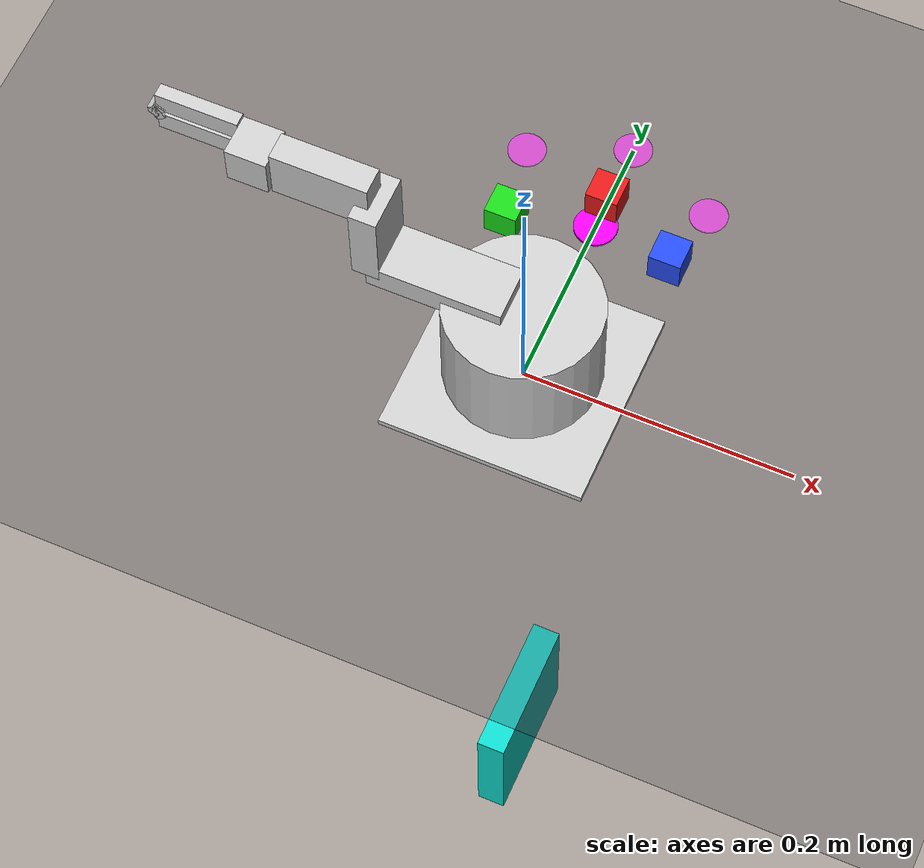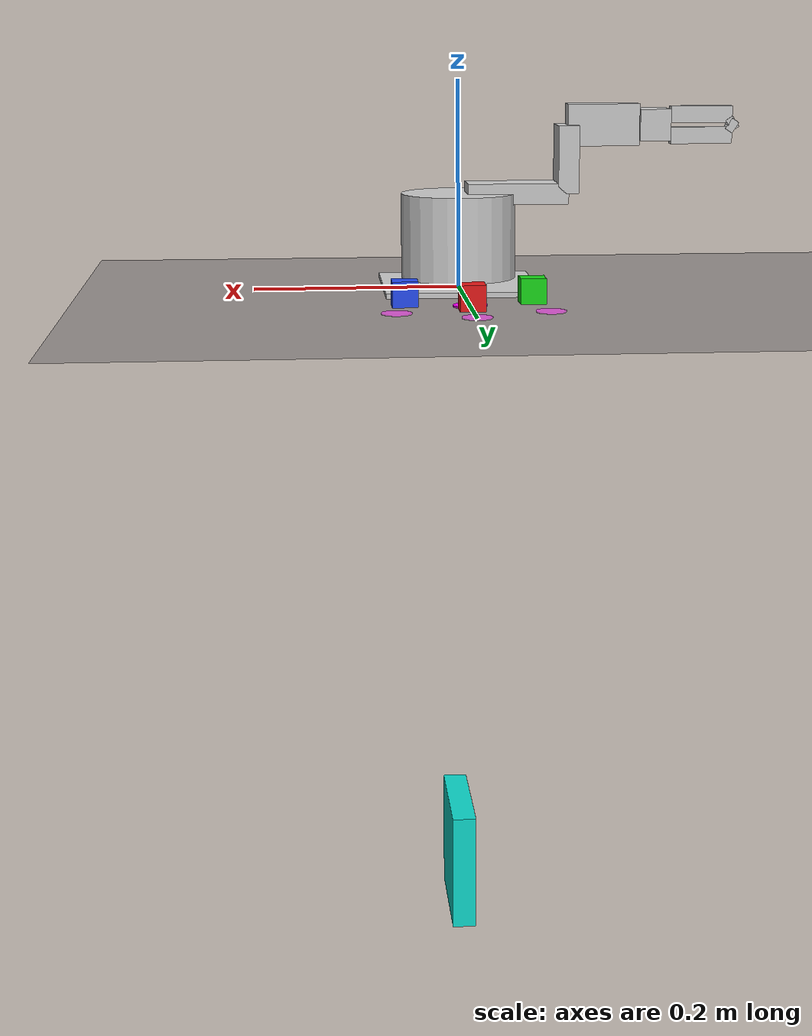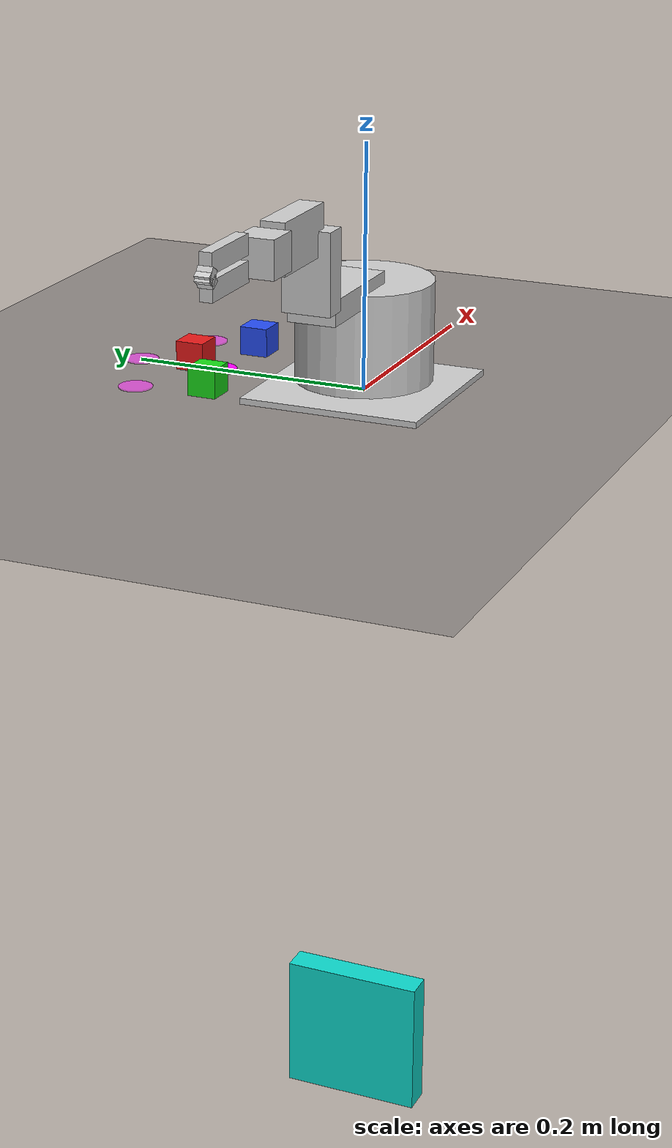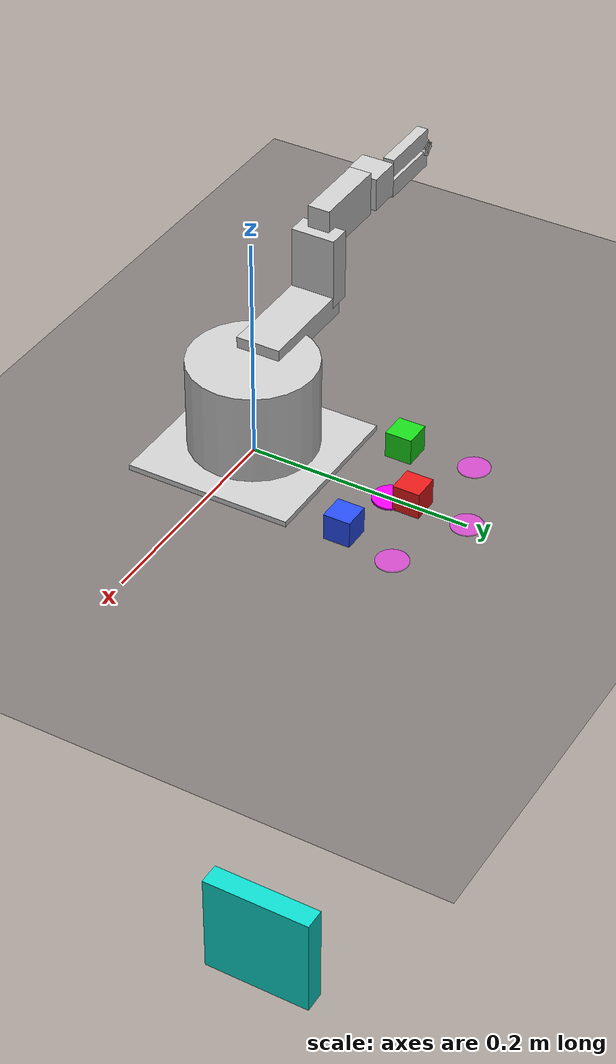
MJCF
<mujoco model="bracket_arm">
  <compiler angle="radian" autolimits="true"/>
  <option gravity="0 0 -9.81" timestep="0.002" integrator="implicitfast"/>

  <visual>
    <headlight ambient="0.4 0.4 0.4" diffuse="0.5 0.5 0.5" specular="0.1 0.1 0.1"/>
    <quality shadowsize="4096"/>
  </visual>

  <asset>
    <texture name="grid" type="2d" builtin="checker" rgb1="0.18 0.18 0.20" rgb2="0.24 0.24 0.27"
             width="512" height="512" mark="cross" markrgb="0.3 0.3 0.32"/>
    <material name="table" texture="grid" texrepeat="8 8" reflectance="0.05"/>
    <material name="silver" rgba="0.6 0.6 0.6 1"/>
    <material name="green"  rgba="0.1 0.8 0.1 1"/>
    <material name="cyan"   rgba="0.1 0.8 0.8 1"/>
    <material name="blue"   rgba="0.15 0.3 0.9 1"/>
    <material name="yellow" rgba="0.9 0.85 0.1 1"/>
    <material name="orange" rgba="1 0.55 0.05 1"/>
    <material name="white"  rgba="0.9 0.9 0.9 1"/>
    <material name="lightgray" rgba="0.8 0.8 0.8 1"/>
  </asset>

  <default>
    <joint damping="0.4" armature="0.01" frictionloss="0.002"/>
    <geom friction="1.0 0.05 0.001"/>
    <default class="arm">
      <geom type="box" density="800" group="1"/>     <!-- group 1 = the ARM; can be hidden for perception -->
    </default>
    <position kp="30" forcerange="-20 20"/>
  </default>

  <worldbody>
    <light name="key"  pos="0.2 0.0 0.8" dir="-0.2 0.1 -1" directional="false" castshadow="true"
           diffuse="0.8 0.8 0.8"/>
    <light name="fill" pos="-0.3 0.4 0.6" dir="0.3 -0.4 -0.6" directional="false" castshadow="false"
           diffuse="0.3 0.3 0.35"/>
    <geom name="table" type="plane" size="0.8 0.8 0.01" material="table"/>

    <!-- overhead cameras -->
    <camera name="top" pos="0 0.13 0.55" euler="0 0 0" fovy="45"/>           <!-- straight down -->
    <!-- overview: panned to look PARALLEL to the work surface (aim y == camera y -> zero y in the view
         direction), base nearly out to the right, wider fovy for the enlarged workspace -->
    <camera name="overview" pos="-0.17 0.15 0.32" mode="targetbody" target="ws_center" fovy="64"/>
    <body name="ws_center" pos="0 0.15 0.02"><geom type="sphere" size="0.001" contype="0" conaffinity="0" rgba="1 1 1 0"/></body>

    <!-- ===================== the arm ===================== -->
    <body name="base_link" pos="0 0 0" childclass="arm">
      <geom name="base_plate" type="box" size="0.075 0.075 0.0025" pos="0 0 0.0025" material="lightgray"/>
      <body name="turret_link" pos="0 0 0.01">
        <joint name="joint_0" type="hinge" axis="0 0 1" range="0 3.1416"/>
        <geom name="turret" type="cylinder" size="0.056 0.041" pos="0 0 0.041" material="lightgray"/>
        <body name="upper_arm_link" pos="-0.008 0 0.082" quat="0.70711 0 -0.70711 0">
          <joint name="joint_1" type="hinge" axis="0 1 0" range="0 3.1416"/>
          <geom name="upper_arm" size="0.01 0.02 0.049" pos="0 0 0.049" material="lightgray"/>
          <body name="forearm_link" pos="0 0 0.098" quat="0.70711 0 0.70711 0">
            <joint name="joint_2" type="hinge" axis="0 -1 0" range="0 3.1416"/>
            <geom name="forearm" size="0.01 0.02 0.0325" pos="0 0 0.0325" material="lightgray"/>
            <body name="wrist_link" pos="0 0 0.065" quat="0.70711 0 -0.70711 0">
              <joint name="joint_3" type="hinge" axis="0 1 0" range="0 3.1416"/>
              <geom name="wrist" size="0.02 0.01 0.035" pos="0 0 0.035" material="lightgray"/>
              <body name="gripper_base_link" pos="0 0 0.070">
                <joint name="joint_4" type="hinge" axis="0 0 1" range="0 3.1416"/>
                <geom name="gripper_base" size="0.015 0.015 0.015" pos="0 0 0.015" material="lightgray"/>
                <!-- grasp reference (between the fingers), as in the URDF joint_grasp -->
                <site name="grasp" pos="0 0.01 0.10" size="0.004" rgba="1 0 0 0"/>
                <!-- CONTACT site at the claw notch (the point the claws actually push with) -->
                <site name="contact" pos="0 0.01 0.082" size="0.004" rgba="1 0.5 0 0"/>
                <body name="finger_left" pos="-0.01 0.01 0.03">
                  <joint name="joint_5" type="hinge" axis="0 -1 0" range="0 3.1416"/>
                  <geom name="finger_left" size="0.008 0.005 0.030" pos="0 0 0.030" material="lightgray"/>
                  <!-- NARROW flat-ish PAD (more realistic than a 24mm chunky box): grips a cube face cleanly. -->
                  <geom name="claw_left" type="box" size="0.004 0.006 0.006" pos="0.009 0 0.060"
                        euler="0 1.0 0" material="lightgray"/>
                </body>
                <body name="finger_right" pos="0.01 0.01 0.03">
                  <joint name="joint_5_mimic" type="hinge" axis="0 -1 0" range="-3.1416 0"/>
                  <geom name="finger_right" size="0.008 0.005 0.030" pos="0 0 0.030" material="lightgray"/>
                  <geom name="claw_right" type="box" size="0.004 0.006 0.006" pos="-0.009 0 0.060"
                        euler="0 -1.0 0" material="lightgray"/>
                </body>
              </body>
            </body>
          </body>
        </body>
      </body>
    </body>

    <body name="obj_red" pos="0.00 0.15 0.012">
      <freejoint/><geom type="box" size="0.012 0.012 0.012" rgba="0.9 0.1 0.1 1" density="700"
                        friction="1.4 0.05 0.001"/>
    </body>
    <body name="obj_green" pos="-0.06 0.11 0.012">
      <freejoint/><geom type="box" size="0.012 0.012 0.012" rgba="0.1 0.85 0.1 1" density="700"
                        friction="1.4 0.05 0.001"/>
    </body>
    <body name="obj_blue" pos="0.06 0.12 0.012">
      <freejoint/><geom type="box" size="0.012 0.012 0.012" rgba="0.15 0.3 0.95 1" density="700"
                        friction="1.4 0.05 0.001"/>
    </body>

    <body name="target_marker" mocap="true" pos="0.0 0.13 0.001">
      <geom type="cylinder" size="0.016 0.0008" rgba="1 0 1 0.95" contype="0" conaffinity="0"/>
    </body>
    <body name="target_sel_1" mocap="true" pos="-0.07 0.17 0.001">
      <geom type="cylinder" size="0.014 0.0006" rgba="1 0 1 0.5" contype="0" conaffinity="0"/>
    </body>
    <body name="target_sel_2" mocap="true" pos="0.0 0.20 0.001">
      <geom type="cylinder" size="0.014 0.0006" rgba="1 0 1 0.5" contype="0" conaffinity="0"/>
    </body>
    <body name="target_sel_3" mocap="true" pos="0.07 0.17 0.001">
      <geom type="cylinder" size="0.014 0.0006" rgba="1 0 1 0.5" contype="0" conaffinity="0"/>
    </body>

    <body name="board" pos="0.0 0.0 -0.6">
      <geom name="board_geom" type="box" size="0.012 0.06 0.06" rgba="0.05 0.85 0.8 1"
            friction="1.0 0.02 0.001"/>
    </body>
  </worldbody>

  <equality>
    <!-- right finger mimics the left (multiplier -1), as in the URDF -->
    <joint joint1="joint_5_mimic" joint2="joint_5" polycoef="0 -1 0 0 0"/>
  </equality>

  <actuator>
    <position name="m0" joint="joint_0" ctrlrange="0 3.1416"/>
    <position name="m1" joint="joint_1" ctrlrange="0 3.1416"/>
    <position name="m2" joint="joint_2" ctrlrange="0 3.1416"/>
    <position name="m3" joint="joint_3" ctrlrange="0 3.1416"/>
    <position name="m4" joint="joint_4" ctrlrange="0 3.1416"/>
    <position name="m5" joint="joint_5" ctrlrange="0 3.1416" kp="8"/>
  </actuator>
</mujoco>
